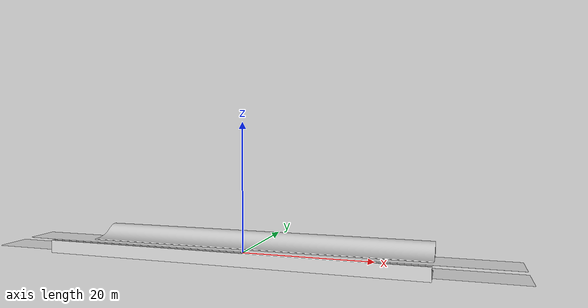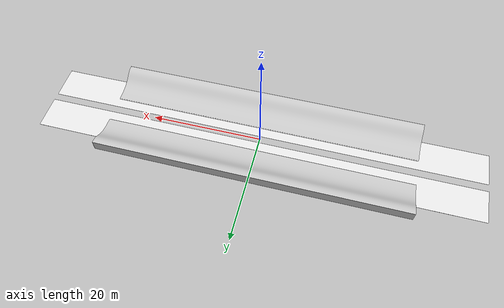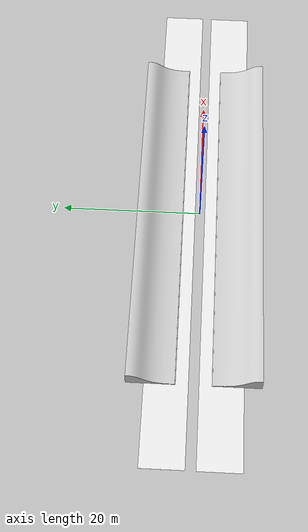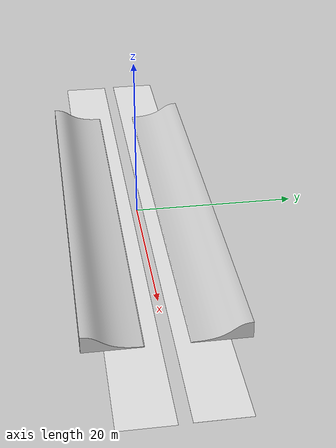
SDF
<?xml version="1.0" ?>
<sdf version="1.6">
  <model name="study_track_block">
    <static>true</static>
    <include>
      <name>slopes</name>
      <uri>model://side_slope</uri>
    </include>

    <include>
      <name>dash_l</name>
      <uri>model://road_dashed_two_white_plane</uri>
      <pose>0 -3.708 0 0 0 1.570796</pose>
    </include>
    <include>
      <name>dash_r</name>
      <uri>model://road_dashed_two_white_plane</uri>
      <pose>0 3.708 0 0 0 1.570796</pose>
    </include>

    <link name="transparent_plane">
      <collision name="collision">
        <geometry>
          <plane>
            <normal>0 0 1</normal>
            <size>56 2.8</size>
          </plane>
        </geometry>
        <max_contacts>10</max_contacts>
      </collision>
    </link>

  </model>
</sdf>

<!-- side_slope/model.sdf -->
<sdf version="1.6">
  <model name="side_slope">
    <static>true</static>
    <link name="slope_1">
      <pose>0 -5.778 0 0 0 0</pose>
      <collision name="collision">
        <geometry>
          <mesh>
            <uri>model://side_slope/meshes/side_slope.dae</uri>
            <scale>28 1.5 1.5</scale>
          </mesh>
        </geometry>
      </collision>
      <visual name="visual">
        <geometry>
          <mesh>
            <uri>model://side_slope/meshes/side_slope.dae</uri>
            <scale>28 1.5 1.5</scale>
          </mesh>
        </geometry>
        <material>
          <ambient>0.7 0.7 0.7 1</ambient>
          <diffuse>0.8 0.8 0.8 1</diffuse>
          <specular>0.1 0.1 0.1 1</specular>
          <emissive>0 0 0 0</emissive>
        </material>
      </visual>
    </link>

    <link name="slope_2">
      <pose>0 5.778 0 0 0 3.1416</pose>
      <collision name="collision">
        <geometry>
          <mesh>
            <uri>model://side_slope/meshes/side_slope.dae</uri>
            <scale>28 1.5 1.5</scale>
          </mesh>
        </geometry>
      </collision>
      <visual name="visual">
        <geometry>
          <mesh>
            <uri>model://side_slope/meshes/side_slope.dae</uri>
            <scale>28 1.5 1.5</scale>
          </mesh>
        </geometry>
        <material>
          <ambient>0.7 0.7 0.7 1</ambient>
          <diffuse>0.8 0.8 0.8 1</diffuse>
          <specular>0.1 0.1 0.1 1</specular>
          <emissive>0 0 0 0</emissive>
        </material>
      </visual>
    </link>
  </model>
</sdf>

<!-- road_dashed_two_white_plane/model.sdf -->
<sdf version="1.5">
  <model name="road_dashed_two_white_plane">
    <static>true</static>
    <link name="link">
      <collision name="collision">
        <geometry>
          <plane>
            <normal>0 0 1</normal>
            <size>6 80</size>
          </plane>
        </geometry>
        <surface>
          <contact>
            <collide_bitmask>65535</collide_bitmask>
            <ode/>
          </contact>
          <friction>
            <ode>
              <mu>100</mu>
              <mu2>50</mu2>
            </ode>
            <torsional>
              <ode/>
            </torsional>
          </friction>
          <bounce/>
        </surface>
        <max_contacts>10</max_contacts>
      </collision>
      <visual name="visual">
        <cast_shadows>false</cast_shadows>
        <geometry>
          <plane>
            <normal>0 0 -1</normal>
            <size>6 80</size>
          </plane>
        </geometry>
        <material>
          <script>
            <uri>model://road_dashed_two_white/materials/scripts</uri>
            <uri>model://road_dashed_two_white/materials/textures</uri>
            <name>DashedTwoWhite</name>
          </script>
        </material>
      </visual>
    </link>
  </model>
</sdf>
